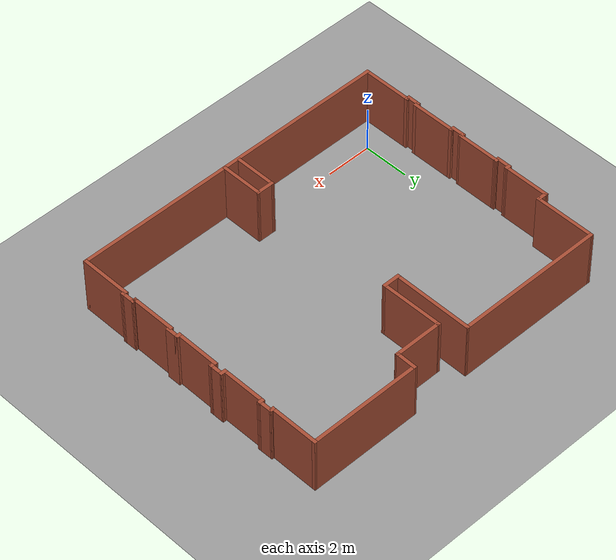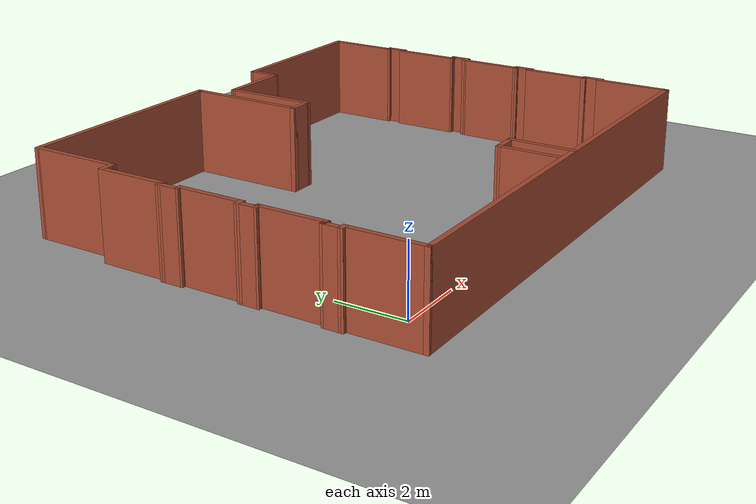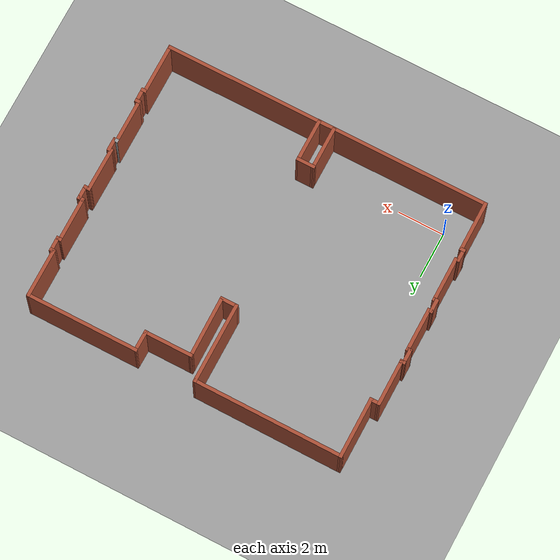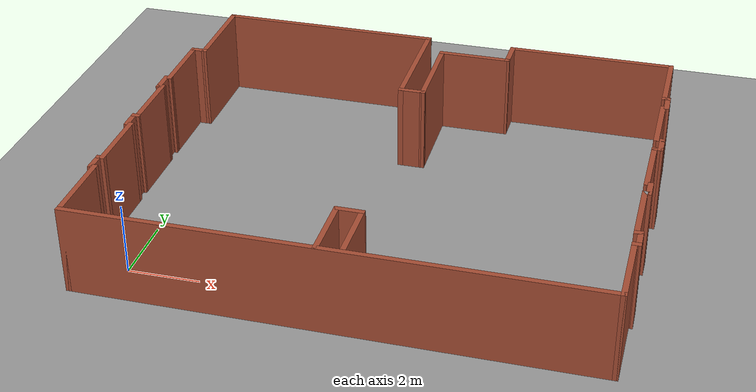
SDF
<sdf version="1.6">
 <world name="default">
  <light name="sun" type="directional">
   <pose>0 0 10 0 -0 0</pose>
   <diffuse>0.8 0.8 0.8 1</diffuse>
   <specular>0.2 0.2 0.2 1</specular>
   <attenuation>
    <range>1000</range>
    <constant>0.9</constant>
    <linear>0.01</linear>
    <quadratic>0.001</quadratic>
   </attenuation>
   <direction>0.5 0.1 -0.9</direction>
  </light>
  <scene><ambient>0.4 0.4 0.4 1</ambient><background>0.7 0.7 0.7 1</background><shadows>1</shadows></scene>
  <physics name="default_physics" default="0" type="ode">
   <max_step_size>0.01</max_step_size>
   <real_time_factor>1</real_time_factor>
   <real_time_update_rate>100</real_time_update_rate>
  </physics>
  <model name="ground_plane_0">
   <static>1</static>
   <link name="link">
    <collision name="collision">
     <geometry><plane><normal>0 0 1</normal><size>100 100</size></plane></geometry>
     <surface><friction><ode><mu>100</mu><mu2>50</mu2></ode></friction></surface>
    </collision>
    <visual name="visual">
     <cast_shadows>0</cast_shadows>
     <geometry><plane><normal>0 0 1</normal><size>100 100</size></plane></geometry>
     <material>
      <script><uri>file://media/materials/scripts/gazebo.material</uri><name>Gazebo/Grey</name></script>
     </material>
    </visual>
    <velocity_decay><linear>0</linear><angular>0</angular></velocity_decay>
   </link>
   <pose>0.497681 0 0 0 -0 0</pose>
  </model>
  <gravity>0 0 -9.8</gravity>
  <magnetic_field>6e-06 2.3e-05 -4.2e-05</magnetic_field>
  <atmosphere type="adiabatic"/>
  <spherical_coordinates>
   <surface_model>EARTH_WGS84</surface_model>
   <latitude_deg>0</latitude_deg>
   <longitude_deg>0</longitude_deg>
   <elevation>0</elevation>
   <heading_deg>0</heading_deg>
  </spherical_coordinates>
  <model name="Arsenal">
   <pose>5.95891 4.69363 0 0 -0 0</pose>
   <link name="Wall_101">
    <collision name="Wall_101_Collision">
     <geometry><box><size>0.310737 0.15 2.5</size></box></geometry>
     <pose>0 0 1.25 0 -0 0</pose>
    </collision>
    <visual name="Wall_101_Visual">
     <pose>0 0 1.25 0 -0 0</pose>
     <geometry><box><size>0.310737 0.15 2.5</size></box></geometry>
     <material>
      <script><uri>file://media/materials/scripts/gazebo.material</uri><name>Gazebo/Bricks</name></script>
      <ambient>1 1 1 1</ambient>
     </material>
     <meta><layer>0</layer></meta>
    </visual>
    <pose>7.10119 1.39533 0 0 0 -0.032025</pose>
   </link>
   <link name="Wall_103">
    <collision name="Wall_103_Collision">
     <geometry><box><size>0.30967 0.15 2.5</size></box></geometry>
     <pose>0 0 1.25 0 -0 0</pose>
    </collision>
    <visual name="Wall_103_Visual">
     <pose>0 0 1.25 0 -0 0</pose>
     <geometry><box><size>0.30967 0.15 2.5</size></box></geometry>
     <material>
      <script><uri>file://media/materials/scripts/gazebo.material</uri><name>Gazebo/Bricks</name></script>
      <ambient>1 1 1 1</ambient>
     </material>
     <meta><layer>0</layer></meta>
    </visual>
    <pose>7.10169 0.894256 0 0 0 -0.018748</pose>
   </link>
   <link name="Wall_105">
    <collision name="Wall_105_Collision">
     <geometry><box><size>0.25 0.15 2.5</size></box></geometry>
     <pose>0 0 1.25 0 -0 0</pose>
    </collision>
    <visual name="Wall_105_Visual">
     <pose>0 0 1.25 0 -0 0</pose>
     <geometry><box><size>0.25 0.15 2.5</size></box></geometry>
     <material>
      <script><uri>file://media/materials/scripts/gazebo.material</uri><name>Gazebo/Bricks</name></script>
      <ambient>1 1 1 1</ambient>
     </material>
     <meta><layer>0</layer></meta>
    </visual>
    <pose>7.0596 -0.929033 0 0 -0 0</pose>
   </link>
   <link name="Wall_109">
    <collision name="Wall_109_Collision">
     <geometry><box><size>0.25 0.15 2.5</size></box></geometry>
     <pose>0 0 1.25 0 -0 0</pose>
    </collision>
    <visual name="Wall_109_Visual">
     <pose>0 0 1.25 0 -0 0</pose>
     <geometry><box><size>0.25 0.15 2.5</size></box></geometry>
     <material>
      <script><uri>file://media/materials/scripts/gazebo.material</uri><name>Gazebo/Bricks</name></script>
      <ambient>1 1 1 1</ambient>
     </material>
     <meta><layer>0</layer></meta>
    </visual>
    <pose>7.0596 -3.23382 0 0 -0 0</pose>
   </link>
   <link name="Wall_117">
    <collision name="Wall_117_Collision">
     <geometry><box><size>0.15 0.15 2.5</size></box></geometry>
     <pose>0 0 1.25 0 -0 0</pose>
    </collision>
    <visual name="Wall_117_Visual">
     <pose>0 0 1.25 0 -0 0</pose>
     <geometry><box><size>0.15 0.15 2.5</size></box></geometry>
     <material>
      <script><uri>file://media/materials/scripts/gazebo.material</uri><name>Gazebo/Grey</name></script>
      <ambient>1 1 1 1</ambient>
     </material>
     <meta><layer>0</layer></meta>
    </visual>
    <pose>7.0096 -1.38382 0 0 -0 0</pose>
   </link>
   <link name="Wall_126">
    <collision name="Wall_126_Collision">
     <geometry><box><size>0.65 0.15 2.5</size></box></geometry>
     <pose>0 0 1.25 0 -0 0</pose>
    </collision>
    <visual name="Wall_126_Visual">
     <pose>0 0 1.25 0 -0 0</pose>
     <geometry><box><size>0.65 0.15 2.5</size></box></geometry>
     <material>
      <script><uri>file://media/materials/scripts/gazebo.material</uri><name>Gazebo/Bricks</name></script>
      <ambient>1 1 1 1</ambient>
     </material>
     <meta><layer>0</layer></meta>
    </visual>
    <pose>7.18169 1.14276 0 0 -0 1.5708</pose>
   </link>
   <link name="Wall_133">
    <collision name="Wall_133_Collision">
     <geometry><box><size>0.681888 0.15 2.5</size></box></geometry>
     <pose>0 0 1.25 0 -0 0</pose>
    </collision>
    <visual name="Wall_133_Visual">
     <pose>0 0 1.25 0 -0 0</pose>
     <geometry><box><size>0.681888 0.15 2.5</size></box></geometry>
     <material>
      <script><uri>file://media/materials/scripts/gazebo.material</uri><name>Gazebo/Bricks</name></script>
      <ambient>1 1 1 1</ambient>
     </material>
     <meta><layer>0</layer></meta>
    </visual>
    <pose>7.11719 3.51383 0 0 0 -1.55766</pose>
   </link>
   <link name="Wall_136">
    <collision name="Wall_136_Collision">
     <geometry><box><size>2 0.15 2.5</size></box></geometry>
     <pose>0 0 1.25 0 -0 0</pose>
    </collision>
    <visual name="Wall_136_Visual">
     <pose>0 0 1.25 0 -0 0</pose>
     <geometry><box><size>2 0.15 2.5</size></box></geometry>
     <material>
      <script><uri>file://media/materials/scripts/gazebo.material</uri><name>Gazebo/Bricks</name></script>
      <ambient>1 1 1 1</ambient>
     </material>
     <meta><layer>0</layer></meta>
    </visual>
    <pose>7.0096 -2.30882 0 0 -0 1.5708</pose>
   </link>
   <link name="Wall_137">
    <collision name="Wall_137_Collision">
     <geometry><box><size>0.15 0.15 2.5</size></box></geometry>
     <pose>0 0 1.25 0 -0 0</pose>
    </collision>
    <visual name="Wall_137_Visual">
     <pose>0 0 1.25 0 -0 0</pose>
     <geometry><box><size>0.15 0.15 2.5</size></box></geometry>
     <material>
      <script><uri>file://media/materials/scripts/gazebo.material</uri><name>Gazebo/Grey</name></script>
      <ambient>1 1 1 1</ambient>
     </material>
     <meta><layer>0</layer></meta>
    </visual>
    <pose>7.0096 -1.38382 0 0 -0 0</pose>
   </link>
   <link name="Wall_139">
    <collision name="Wall_139_Collision">
     <geometry><box><size>0.25 0.15 2.5</size></box></geometry>
     <pose>0 0 1.25 0 -0 0</pose>
    </collision>
    <visual name="Wall_139_Visual">
     <pose>0 0 1.25 0 -0 0</pose>
     <geometry><box><size>0.25 0.15 2.5</size></box></geometry>
     <material>
      <script><uri>file://media/materials/scripts/gazebo.material</uri><name>Gazebo/Bricks</name></script>
      <ambient>1 1 1 1</ambient>
     </material>
     <meta><layer>0</layer></meta>
    </visual>
    <pose>7.0596 -1.38382 0 0 -0 0</pose>
   </link>
   <link name="Wall_140">
    <collision name="Wall_140_Collision">
     <geometry><box><size>0.604786 0.15 2.5</size></box></geometry>
     <pose>0 0 1.25 0 -0 0</pose>
    </collision>
    <visual name="Wall_140_Visual">
     <pose>0 0 1.25 0 -0 0</pose>
     <geometry><box><size>0.604786 0.15 2.5</size></box></geometry>
     <material>
      <script><uri>file://media/materials/scripts/gazebo.material</uri><name>Gazebo/Bricks</name></script>
      <ambient>1 1 1 1</ambient>
     </material>
     <meta><layer>0</layer></meta>
    </visual>
    <pose>7.1096 -1.15643 0 0 -0 1.5708</pose>
   </link>
   <link name="Wall_144">
    <collision name="Wall_144_Collision">
     <geometry><box><size>0.25 0.15 2.5</size></box></geometry>
     <pose>0 0 1.25 0 -0 0</pose>
    </collision>
    <visual name="Wall_144_Visual">
     <pose>0 0 1.25 0 -0 0</pose>
     <geometry><box><size>0.25 0.15 2.5</size></box></geometry>
     <material>
      <script><uri>file://media/materials/scripts/gazebo.material</uri><name>Gazebo/Bricks</name></script>
      <ambient>1 1 1 1</ambient>
     </material>
     <meta><layer>0</layer></meta>
    </visual>
    <pose>7.06686 -3.74301 0 0 -0 0</pose>
   </link>
   <link name="Wall_145">
    <collision name="Wall_145_Collision">
     <geometry><box><size>0.659247 0.15 2.5</size></box></geometry>
     <pose>0 0 1.25 0 -0 0</pose>
    </collision>
    <visual name="Wall_145_Visual">
     <pose>0 0 1.25 0 -0 0</pose>
     <geometry><box><size>0.659247 0.15 2.5</size></box></geometry>
     <material>
      <script><uri>file://media/materials/scripts/gazebo.material</uri><name>Gazebo/Bricks</name></script>
      <ambient>1 1 1 1</ambient>
     </material>
     <meta><layer>0</layer></meta>
    </visual>
    <pose>7.11323 -3.48842 0 0 -0 1.58505</pose>
   </link>
   <link name="Wall_38">
    <collision name="Wall_38_Collision">
     <geometry><box><size>14.25 0.15 2.5</size></box></geometry>
     <pose>0 0 1.25 0 -0 0</pose>
    </collision>
    <visual name="Wall_38_Visual">
     <pose>0 0 1.25 0 -0 0</pose>
     <geometry><box><size>14.25 0.15 2.5</size></box></geometry>
     <material>
      <script><uri>file://media/materials/scripts/gazebo.material</uri><name>Gazebo/Bricks</name></script>
      <ambient>1 1 1 1</ambient>
     </material>
     <meta><layer>0</layer></meta>
    </visual>
    <pose>-0.03314 -5.84301 0 0 -0 0</pose>
   </link>
   <link name="Wall_40">
    <collision name="Wall_40_Collision">
     <geometry><box><size>1.9 0.15 2.5</size></box></geometry>
     <pose>0 0 1.25 0 -0 0</pose>
    </collision>
    <visual name="Wall_40_Visual">
     <pose>0 0 1.25 0 -0 0</pose>
     <geometry><box><size>1.9 0.15 2.5</size></box></geometry>
     <material>
      <script><uri>file://media/materials/scripts/gazebo.material</uri><name>Gazebo/Bricks</name></script>
      <ambient>1 1 1 1</ambient>
     </material>
     <meta><layer>0</layer></meta>
    </visual>
    <pose>0.294848 -4.93473 0 0 0 -1.5708</pose>
   </link>
   <link name="Wall_42">
    <collision name="Wall_42_Collision">
     <geometry><box><size>1.9 0.15 2.5</size></box></geometry>
     <pose>0 0 1.25 0 -0 0</pose>
    </collision>
    <visual name="Wall_42_Visual">
     <pose>0 0 1.25 0 -0 0</pose>
     <geometry><box><size>1.9 0.15 2.5</size></box></geometry>
     <material>
      <script><uri>file://media/materials/scripts/gazebo.material</uri><name>Gazebo/Bricks</name></script>
      <ambient>1 1 1 1</ambient>
     </material>
     <meta><layer>0</layer></meta>
    </visual>
    <pose>-0.372183 -4.93374 0 0 -0 1.5708</pose>
   </link>
   <link name="Wall_44">
    <collision name="Wall_44_Collision">
     <geometry><box><size>0.817031 0.15 2.5</size></box></geometry>
     <pose>0 0 1.25 0 -0 0</pose>
    </collision>
    <visual name="Wall_44_Visual">
     <pose>0 0 1.25 0 -0 0</pose>
     <geometry><box><size>0.817031 0.15 2.5</size></box></geometry>
     <material>
      <script><uri>file://media/materials/scripts/gazebo.material</uri><name>Gazebo/Bricks</name></script>
      <ambient>1 1 1 1</ambient>
     </material>
     <meta><layer>0</layer></meta>
    </visual>
    <pose>-0.038668 -4.05924 0 0 0 -0.00148</pose>
   </link>
   <link name="Wall_47">
    <collision name="Wall_47_Collision">
     <geometry><box><size>2.25 0.15 2.5</size></box></geometry>
     <pose>0 0 1.25 0 -0 0</pose>
    </collision>
    <visual name="Wall_47_Visual">
     <pose>0 0 1.25 0 -0 0</pose>
     <geometry><box><size>2.25 0.15 2.5</size></box></geometry>
     <material>
      <script><uri>file://media/materials/scripts/gazebo.material</uri><name>Gazebo/Bricks</name></script>
      <ambient>1 1 1 1</ambient>
     </material>
     <meta><layer>0</layer></meta>
    </visual>
    <pose>-7.08314 -4.79301 0 0 -0 1.5708</pose>
   </link>
   <link name="Wall_49">
    <collision name="Wall_49_Collision">
     <geometry><box><size>2 0.15 2.5</size></box></geometry>
     <pose>0 0 1.25 0 -0 0</pose>
    </collision>
    <visual name="Wall_49_Visual">
     <pose>0 0 1.25 0 -0 0</pose>
     <geometry><box><size>2 0.15 2.5</size></box></geometry>
     <material>
      <script><uri>file://media/materials/scripts/gazebo.material</uri><name>Gazebo/Bricks</name></script>
      <ambient>1 1 1 1</ambient>
     </material>
     <meta><layer>0</layer></meta>
    </visual>
    <pose>-7.07848 -2.34523 0 0 -0 1.5708</pose>
   </link>
   <link name="Wall_51">
    <collision name="Wall_51_Collision">
     <geometry><box><size>1.93928 0.15 2.5</size></box></geometry>
     <pose>0 0 1.25 0 -0 0</pose>
    </collision>
    <visual name="Wall_51_Visual">
     <pose>0 0 1.25 0 -0 0</pose>
     <geometry><box><size>1.93928 0.15 2.5</size></box></geometry>
     <material>
      <script><uri>file://media/materials/scripts/gazebo.material</uri><name>Gazebo/Bricks</name></script>
      <ambient>1 1 1 1</ambient>
     </material>
     <meta><layer>0</layer></meta>
    </visual>
    <pose>-7.08173 -0.037269 0 0 -0 1.56958</pose>
   </link>
   <link name="Wall_53">
    <collision name="Wall_53_Collision">
     <geometry><box><size>2.06072 0.15 2.5</size></box></geometry>
     <pose>0 0 1.25 0 -0 0</pose>
    </collision>
    <visual name="Wall_53_Visual">
     <pose>0 0 1.25 0 -0 0</pose>
     <geometry><box><size>2.06072 0.15 2.5</size></box></geometry>
     <material>
      <script><uri>file://media/materials/scripts/gazebo.material</uri><name>Gazebo/Bricks</name></script>
      <ambient>1 1 1 1</ambient>
     </material>
     <meta><layer>0</layer></meta>
    </visual>
    <pose>-7.08243 2.35744 0 0 -0 1.57193</pose>
   </link>
   <link name="Wall_55">
    <collision name="Wall_55_Collision">
     <geometry><box><size>0.5 0.15 2.5</size></box></geometry>
     <pose>0 0 1.25 0 -0 0</pose>
    </collision>
    <visual name="Wall_55_Visual">
     <pose>0 0 1.25 0 -0 0</pose>
     <geometry><box><size>0.5 0.15 2.5</size></box></geometry>
     <material>
      <script><uri>file://media/materials/scripts/gazebo.material</uri><name>Gazebo/Bricks</name></script>
      <ambient>1 1 1 1</ambient>
     </material>
     <meta><layer>0</layer></meta>
    </visual>
    <pose>-6.90841 3.31278 0 0 0 -0.000114</pose>
   </link>
   <link name="Wall_57">
    <collision name="Wall_57_Collision">
     <geometry><box><size>2.68 0.15 2.5</size></box></geometry>
     <pose>0 0 1.25 0 -0 0</pose>
    </collision>
    <visual name="Wall_57_Visual">
     <pose>0 0 1.25 0 -0 0</pose>
     <geometry><box><size>2.68 0.15 2.5</size></box></geometry>
     <material>
      <script><uri>file://media/materials/scripts/gazebo.material</uri><name>Gazebo/Bricks</name></script>
      <ambient>1 1 1 1</ambient>
     </material>
     <meta><layer>0</layer></meta>
    </visual>
    <pose>-6.73331 4.57776 0 0 -0 1.5708</pose>
   </link>
   <link name="Wall_58">
    <collision name="Wall_58_Collision">
     <geometry><box><size>6.51682 0.15 2.5</size></box></geometry>
     <pose>0 0 1.25 0 -0 0</pose>
    </collision>
    <visual name="Wall_58_Visual">
     <pose>0 0 1.25 0 -0 0</pose>
     <geometry><box><size>6.51682 0.15 2.5</size></box></geometry>
     <material>
      <script><uri>file://media/materials/scripts/gazebo.material</uri><name>Gazebo/Bricks</name></script>
      <ambient>1 1 1 1</ambient>
     </material>
     <meta><layer>0</layer></meta>
    </visual>
    <pose>-3.54981 5.83176 0 0 0 -0.003455</pose>
   </link>
   <link name="Wall_59">
    <collision name="Wall_59_Collision">
     <geometry><box><size>3.55 0.15 2.5</size></box></geometry>
     <pose>0 0 1.25 0 -0 0</pose>
    </collision>
    <visual name="Wall_59_Visual">
     <pose>0 0 1.25 0 -0 0</pose>
     <geometry><box><size>3.55 0.15 2.5</size></box></geometry>
     <material>
      <script><uri>file://media/materials/scripts/gazebo.material</uri><name>Gazebo/Bricks</name></script>
      <ambient>1 1 1 1</ambient>
     </material>
     <meta><layer>0</layer></meta>
    </visual>
    <pose>-0.366308 4.12076 0 0 0 -1.5708</pose>
   </link>
   <link name="Wall_61">
    <collision name="Wall_61_Collision">
     <geometry><box><size>0.790055 0.15 2.5</size></box></geometry>
     <pose>0 0 1.25 0 -0 0</pose>
    </collision>
    <visual name="Wall_61_Visual">
     <pose>0 0 1.25 0 -0 0</pose>
     <geometry><box><size>0.790055 0.15 2.5</size></box></geometry>
     <material>
      <script><uri>file://media/materials/scripts/gazebo.material</uri><name>Gazebo/Bricks</name></script>
      <ambient>1 1 1 1</ambient>
     </material>
     <meta><layer>0</layer></meta>
    </visual>
    <pose>-0.046308 2.42076 0 0 -0 0</pose>
   </link>
   <link name="Wall_62">
    <collision name="Wall_62_Collision">
     <geometry><box><size>2.73364 0.15 2.5</size></box></geometry>
     <pose>0 0 1.25 0 -0 0</pose>
    </collision>
    <visual name="Wall_62_Visual">
     <pose>0 0 1.25 0 -0 0</pose>
     <geometry><box><size>2.73364 0.15 2.5</size></box></geometry>
     <material>
      <script><uri>file://media/materials/scripts/gazebo.material</uri><name>Gazebo/Bricks</name></script>
      <ambient>1 1 1 1</ambient>
     </material>
     <meta><layer>0</layer></meta>
    </visual>
    <pose>0.261692 3.71276 0 0 -0 1.58008</pose>
   </link>
   <link name="Wall_64">
    <collision name="Wall_64_Collision">
     <geometry><box><size>0.15 0.15 2.5</size></box></geometry>
     <pose>0 0 1.25 0 -0 0</pose>
    </collision>
    <visual name="Wall_64_Visual">
     <pose>0 0 1.25 0 -0 0</pose>
     <geometry><box><size>0.15 0.15 2.5</size></box></geometry>
     <material>
      <script><uri>file://media/materials/scripts/gazebo.material</uri><name>Gazebo/Bricks</name></script>
      <ambient>1 1 1 1</ambient>
     </material>
     <meta><layer>0</layer></meta>
    </visual>
    <pose>2.24969 5.00476 0 0 -0 0</pose>
   </link>
   <link name="Wall_65">
    <collision name="Wall_65_Collision">
     <geometry><box><size>2.15 0.15 2.5</size></box></geometry>
     <pose>0 0 1.25 0 -0 0</pose>
    </collision>
    <visual name="Wall_65_Visual">
     <pose>0 0 1.25 0 -0 0</pose>
     <geometry><box><size>2.15 0.15 2.5</size></box></geometry>
     <material>
      <script><uri>file://media/materials/scripts/gazebo.material</uri><name>Gazebo/Bricks</name></script>
      <ambient>1 1 1 1</ambient>
     </material>
     <meta><layer>0</layer></meta>
    </visual>
    <pose>1.24969 5.00476 0 0 -0 3.14159</pose>
   </link>
   <link name="Wall_69">
    <collision name="Wall_69_Collision">
     <geometry><box><size>0.25 0.15 2.5</size></box></geometry>
     <pose>0 0 1.25 0 -0 0</pose>
    </collision>
    <visual name="Wall_69_Visual">
     <pose>0 0 1.25 0 -0 0</pose>
     <geometry><box><size>0.25 0.15 2.5</size></box></geometry>
     <material>
      <script><uri>file://media/materials/scripts/gazebo.material</uri><name>Gazebo/Bricks</name></script>
      <ambient>1 1 1 1</ambient>
     </material>
     <meta><layer>0</layer></meta>
    </visual>
    <pose>-7.13135 1.40208 0 0 -0 3.14159</pose>
   </link>
   <link name="Wall_7">
    <collision name="Wall_7_Collision">
     <geometry><box><size>0.955116 0.15 2.5</size></box></geometry>
     <pose>0 0 1.25 0 -0 0</pose>
    </collision>
    <visual name="Wall_7_Visual">
     <pose>0 0 1.25 0 -0 0</pose>
     <geometry><box><size>0.955116 0.15 2.5</size></box></geometry>
     <material>
      <script><uri>file://media/materials/scripts/gazebo.material</uri><name>Gazebo/Bricks</name></script>
      <ambient>1 1 1 1</ambient>
     </material>
     <meta><layer>0</layer></meta>
    </visual>
    <pose>2.25469 5.40726 0 0 -0 1.55838</pose>
   </link>
   <link name="Wall_71">
    <collision name="Wall_71_Collision">
     <geometry><box><size>0.25 0.15 2.5</size></box></geometry>
     <pose>0 0 1.25 0 -0 0</pose>
    </collision>
    <visual name="Wall_71_Visual">
     <pose>0 0 1.25 0 -0 0</pose>
     <geometry><box><size>0.25 0.15 2.5</size></box></geometry>
     <material>
      <script><uri>file://media/materials/scripts/gazebo.material</uri><name>Gazebo/Bricks</name></script>
      <ambient>1 1 1 1</ambient>
     </material>
     <meta><layer>0</layer></meta>
    </visual>
    <pose>-7.13064 0.857371 0 0 -0 3.14159</pose>
   </link>
   <link name="Wall_72">
    <collision name="Wall_72_Collision">
     <geometry><box><size>0.694706 0.15 2.5</size></box></geometry>
     <pose>0 0 1.25 0 -0 0</pose>
    </collision>
    <visual name="Wall_72_Visual">
     <pose>0 0 1.25 0 -0 0</pose>
     <geometry><box><size>0.694706 0.15 2.5</size></box></geometry>
     <material>
      <script><uri>file://media/materials/scripts/gazebo.material</uri><name>Gazebo/Bricks</name></script>
      <ambient>1 1 1 1</ambient>
     </material>
     <meta><layer>0</layer></meta>
    </visual>
    <pose>-7.181 1.12972 0 0 -0 1.57209</pose>
   </link>
   <link name="Wall_74">
    <collision name="Wall_74_Collision">
     <geometry><box><size>0.25 0.15 2.5</size></box></geometry>
     <pose>0 0 1.25 0 -0 0</pose>
    </collision>
    <visual name="Wall_74_Visual">
     <pose>0 0 1.25 0 -0 0</pose>
     <geometry><box><size>0.25 0.15 2.5</size></box></geometry>
     <material>
      <script><uri>file://media/materials/scripts/gazebo.material</uri><name>Gazebo/Bricks</name></script>
      <ambient>1 1 1 1</ambient>
     </material>
     <meta><layer>0</layer></meta>
    </visual>
    <pose>-7.13281 -0.93191 0 0 -0 3.14159</pose>
   </link>
   <link name="Wall_76">
    <collision name="Wall_76_Collision">
     <geometry><box><size>0.25 0.15 2.5</size></box></geometry>
     <pose>0 0 1.25 0 -0 0</pose>
    </collision>
    <visual name="Wall_76_Visual">
     <pose>0 0 1.25 0 -0 0</pose>
     <geometry><box><size>0.25 0.15 2.5</size></box></geometry>
     <material>
      <script><uri>file://media/materials/scripts/gazebo.material</uri><name>Gazebo/Bricks</name></script>
      <ambient>1 1 1 1</ambient>
     </material>
     <meta><layer>0</layer></meta>
    </visual>
    <pose>-7.12847 -1.42023 0 0 -0 3.14159</pose>
   </link>
   <link name="Wall_77">
    <collision name="Wall_77_Collision">
     <geometry><box><size>0.63834 0.15 2.5</size></box></geometry>
     <pose>0 0 1.25 0 -0 0</pose>
    </collision>
    <visual name="Wall_77_Visual">
     <pose>0 0 1.25 0 -0 0</pose>
     <geometry><box><size>0.63834 0.15 2.5</size></box></geometry>
     <material>
      <script><uri>file://media/materials/scripts/gazebo.material</uri><name>Gazebo/Bricks</name></script>
      <ambient>1 1 1 1</ambient>
     </material>
     <meta><layer>0</layer></meta>
    </visual>
    <pose>-7.18064 -1.17607 0 0 -0 1.57968</pose>
   </link>
   <link name="Wall_79">
    <collision name="Wall_79_Collision">
     <geometry><box><size>0.25 0.15 2.5</size></box></geometry>
     <pose>0 0 1.25 0 -0 0</pose>
    </collision>
    <visual name="Wall_79_Visual">
     <pose>0 0 1.25 0 -0 0</pose>
     <geometry><box><size>0.25 0.15 2.5</size></box></geometry>
     <material>
      <script><uri>file://media/materials/scripts/gazebo.material</uri><name>Gazebo/Bricks</name></script>
      <ambient>1 1 1 1</ambient>
     </material>
     <meta><layer>0</layer></meta>
    </visual>
    <pose>-7.13314 -3.74301 0 0 -0 3.14159</pose>
   </link>
   <link name="Wall_8">
    <collision name="Wall_8_Collision">
     <geometry><box><size>4.90324 0.15 2.5</size></box></geometry>
     <pose>0 0 1.25 0 -0 0</pose>
    </collision>
    <visual name="Wall_8_Visual">
     <pose>0 0 1.25 0 -0 0</pose>
     <geometry><box><size>4.90324 0.15 2.5</size></box></geometry>
     <material>
      <script><uri>file://media/materials/scripts/gazebo.material</uri><name>Gazebo/Bricks</name></script>
      <ambient>1 1 1 1</ambient>
     </material>
     <meta><layer>0</layer></meta>
    </visual>
    <pose>4.63619 5.80976 0 0 -0 0</pose>
   </link>
   <link name="Wall_81">
    <collision name="Wall_81_Collision">
     <geometry><box><size>0.25 0.15 2.5</size></box></geometry>
     <pose>0 0 1.25 0 -0 0</pose>
    </collision>
    <visual name="Wall_81_Visual">
     <pose>0 0 1.25 0 -0 0</pose>
     <geometry><box><size>0.25 0.15 2.5</size></box></geometry>
     <material>
      <script><uri>file://media/materials/scripts/gazebo.material</uri><name>Gazebo/Bricks</name></script>
      <ambient>1 1 1 1</ambient>
     </material>
     <meta><layer>0</layer></meta>
    </visual>
    <pose>-7.12847 -3.27023 0 0 -0 3.14159</pose>
   </link>
   <link name="Wall_82">
    <collision name="Wall_82_Collision">
     <geometry><box><size>0.622807 0.15 2.5</size></box></geometry>
     <pose>0 0 1.25 0 -0 0</pose>
    </collision>
    <visual name="Wall_82_Visual">
     <pose>0 0 1.25 0 -0 0</pose>
     <geometry><box><size>0.622807 0.15 2.5</size></box></geometry>
     <material>
      <script><uri>file://media/materials/scripts/gazebo.material</uri><name>Gazebo/Bricks</name></script>
      <ambient>1 1 1 1</ambient>
     </material>
     <meta><layer>0</layer></meta>
    </visual>
    <pose>-7.18081 -3.50662 0 0 0 -1.58066</pose>
   </link>
   <link name="Wall_84">
    <collision name="Wall_84_Collision">
     <geometry><box><size>2.25 0.15 2.5</size></box></geometry>
     <pose>0 0 1.25 0 -0 0</pose>
    </collision>
    <visual name="Wall_84_Visual">
     <pose>0 0 1.25 0 -0 0</pose>
     <geometry><box><size>2.25 0.15 2.5</size></box></geometry>
     <material>
      <script><uri>file://media/materials/scripts/gazebo.material</uri><name>Gazebo/Bricks</name></script>
      <ambient>1 1 1 1</ambient>
     </material>
     <meta><layer>0</layer></meta>
    </visual>
    <pose>7.01686 -4.79301 0 0 -0 1.5708</pose>
   </link>
   <link name="Wall_89">
    <collision name="Wall_89_Collision">
     <geometry><box><size>1.97483 0.15 2.5</size></box></geometry>
     <pose>0 0 1.25 0 -0 0</pose>
    </collision>
    <visual name="Wall_89_Visual">
     <pose>0 0 1.25 0 -0 0</pose>
     <geometry><box><size>1.97483 0.15 2.5</size></box></geometry>
     <material>
      <script><uri>file://media/materials/scripts/gazebo.material</uri><name>Gazebo/Bricks</name></script>
      <ambient>1 1 1 1</ambient>
     </material>
     <meta><layer>0</layer></meta>
    </visual>
    <pose>7.01565 -0.016639 0 0 -0 1.56417</pose>
   </link>
   <link name="Wall_91">
    <collision name="Wall_91_Collision">
     <geometry><box><size>2 0.15 2.5</size></box></geometry>
     <pose>0 0 1.25 0 -0 0</pose>
    </collision>
    <visual name="Wall_91_Visual">
     <pose>0 0 1.25 0 -0 0</pose>
     <geometry><box><size>2 0.15 2.5</size></box></geometry>
     <material>
      <script><uri>file://media/materials/scripts/gazebo.material</uri><name>Gazebo/Bricks</name></script>
      <ambient>1 1 1 1</ambient>
     </material>
     <meta><layer>0</layer></meta>
    </visual>
    <pose>7.02068 2.32291 0 0 -0 1.5708</pose>
   </link>
   <link name="Wall_95">
    <collision name="Wall_95_Collision">
     <geometry><box><size>2.18 0.15 2.5</size></box></geometry>
     <pose>0 0 1.25 0 -0 0</pose>
    </collision>
    <visual name="Wall_95_Visual">
     <pose>0 0 1.25 0 -0 0</pose>
     <geometry><box><size>2.18 0.15 2.5</size></box></geometry>
     <material>
      <script><uri>file://media/materials/scripts/gazebo.material</uri><name>Gazebo/Bricks</name></script>
      <ambient>1 1 1 1</ambient>
     </material>
     <meta><layer>0</layer></meta>
    </visual>
    <pose>7.01319 4.79476 0 0 0 -1.5703</pose>
   </link>
   <link name="Wall_97">
    <collision name="Wall_97_Collision">
     <geometry><box><size>0.25 0.15 2.5</size></box></geometry>
     <pose>0 0 1.25 0 -0 0</pose>
    </collision>
    <visual name="Wall_97_Visual">
     <pose>0 0 1.25 0 -0 0</pose>
     <geometry><box><size>0.25 0.15 2.5</size></box></geometry>
     <material>
      <script><uri>file://media/materials/scripts/gazebo.material</uri><name>Gazebo/Bricks</name></script>
      <ambient>1 1 1 1</ambient>
     </material>
     <meta><layer>0</layer></meta>
    </visual>
    <pose>7.06369 3.77976 0 0 -0 0</pose>
   </link>
   <link name="Wall_99">
    <collision name="Wall_99_Collision">
     <geometry><box><size>0.25 0.15 2.5</size></box></geometry>
     <pose>0 0 1.25 0 -0 0</pose>
    </collision>
    <visual name="Wall_99_Visual">
     <pose>0 0 1.25 0 -0 0</pose>
     <geometry><box><size>0.25 0.15 2.5</size></box></geometry>
     <material>
      <script><uri>file://media/materials/scripts/gazebo.material</uri><name>Gazebo/Bricks</name></script>
      <ambient>1 1 1 1</ambient>
     </material>
     <meta><layer>0</layer></meta>
    </visual>
    <pose>7.07068 3.24791 0 0 -0 0</pose>
   </link>
   <static>1</static>
  </model>
  <audio><device>default</device></audio>
 </world>
</sdf>
